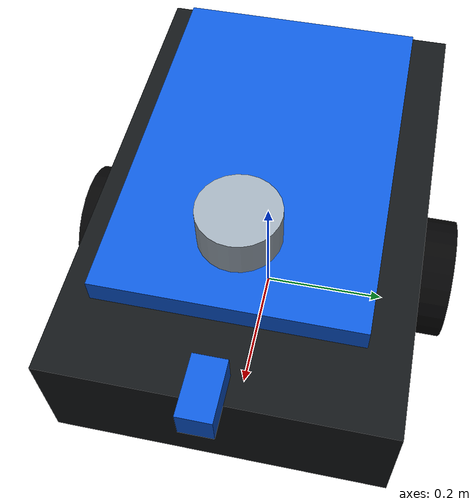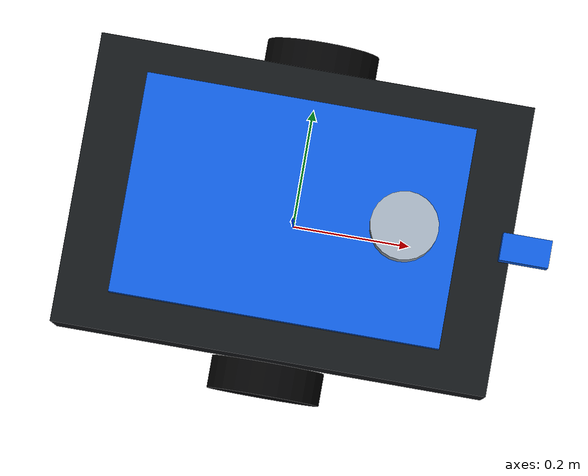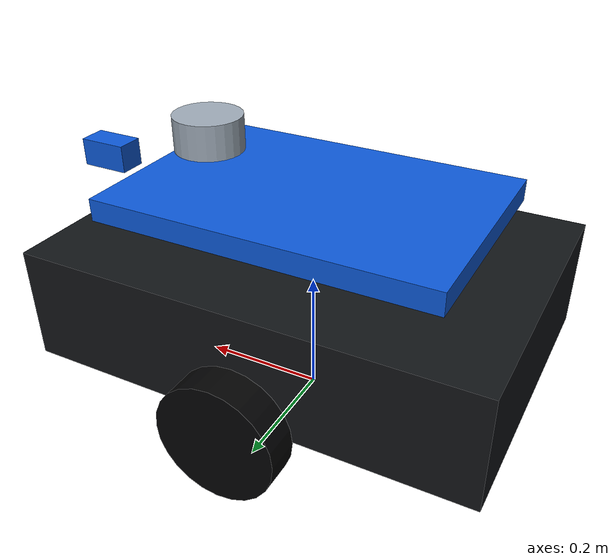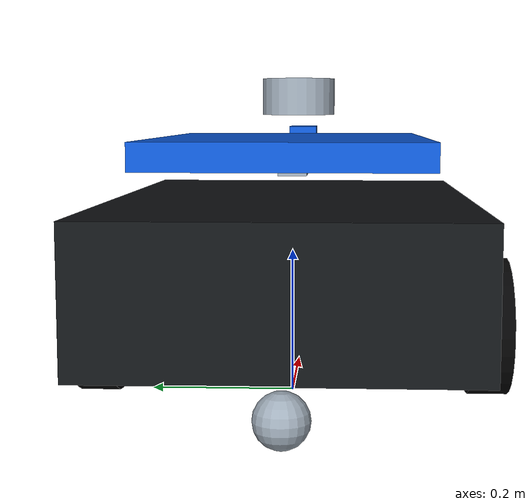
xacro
<?xml version="1.0"?>
<robot xmlns:xacro="http://www.ros.org/wiki/xacro" name="nexus_sentinel">
  <xacro:arg name="use_sim" default="true"/>
  <xacro:arg name="controller_config" default=""/>

  <xacro:property name="base_length" value="0.72"/>
  <xacro:property name="base_width" value="0.48"/>
  <xacro:property name="base_height" value="0.18"/>
  <xacro:property name="wheel_radius" value="0.095"/>
  <xacro:property name="wheel_width" value="0.055"/>
  <xacro:property name="wheel_separation" value="0.54"/>
  <xacro:property name="caster_radius" value="0.035"/>
  <material name="sentinel_charcoal">
    <color rgba="0.07 0.08 0.09 1.0"/>
  </material>
  <material name="sentinel_blue">
    <color rgba="0.05 0.35 0.85 1.0"/>
  </material>
  <material name="sentinel_silver">
    <color rgba="0.62 0.67 0.72 1.0"/>
  </material>
  <material name="sentinel_rubber">
    <color rgba="0.01 0.01 0.012 1.0"/>
  </material>

  <xacro:macro name="box_inertia" params="mass x y z">
    <inertial>
      <mass value="${mass}"/>
      <origin xyz="0 0 0" rpy="0 0 0"/>
      <inertia
        ixx="${mass * (y * y + z * z) / 12.0}"
        ixy="0.0"
        ixz="0.0"
        iyy="${mass * (x * x + z * z) / 12.0}"
        iyz="0.0"
        izz="${mass * (x * x + y * y) / 12.0}"/>
    </inertial>
  </xacro:macro>

  <xacro:macro name="cylinder_inertia" params="mass radius length axis">
    <inertial>
      <mass value="${mass}"/>
      <origin xyz="0 0 0" rpy="0 0 0"/>
      <xacro:if value="${axis == 'x'}">
        <inertia
          ixx="${0.5 * mass * radius * radius}"
          ixy="0.0"
          ixz="0.0"
          iyy="${mass * (3.0 * radius * radius + length * length) / 12.0}"
          iyz="0.0"
          izz="${mass * (3.0 * radius * radius + length * length) / 12.0}"/>
      </xacro:if>
      <xacro:if value="${axis == 'z'}">
        <inertia
          ixx="${mass * (3.0 * radius * radius + length * length) / 12.0}"
          ixy="0.0"
          ixz="0.0"
          iyy="${mass * (3.0 * radius * radius + length * length) / 12.0}"
          iyz="0.0"
          izz="${0.5 * mass * radius * radius}"/>
      </xacro:if>
    </inertial>
  </xacro:macro>

  <link name="base_footprint"/>

  <joint name="base_footprint_joint" type="fixed">
    <parent link="base_footprint"/>
    <child link="base_link"/>
    <origin xyz="0 0 ${wheel_radius}" rpy="0 0 0"/>
  </joint>

  <link name="base_link">
    <visual>
      <origin xyz="0 0 ${base_height / 2.0}" rpy="0 0 0"/>
      <geometry>
        <box size="${base_length} ${base_width} ${base_height}"/>
      </geometry>
      <material name="sentinel_charcoal"/>
    </visual>
    <collision>
      <origin xyz="0 0 ${base_height / 2.0}" rpy="0 0 0"/>
      <geometry>
        <box size="${base_length} ${base_width} ${base_height}"/>
      </geometry>
    </collision>
    <xacro:box_inertia mass="16.0" x="${base_length}" y="${base_width}" z="${base_height}"/>
  </link>

  <link name="top_deck_link">
    <visual>
      <origin xyz="0 0 0.245" rpy="0 0 0"/>
      <geometry>
        <box size="0.54 0.36 0.035"/>
      </geometry>
      <material name="sentinel_blue"/>
    </visual>
    <collision>
      <origin xyz="0 0 0.245" rpy="0 0 0"/>
      <geometry>
        <box size="0.54 0.36 0.035"/>
      </geometry>
    </collision>
    <xacro:box_inertia mass="1.2" x="0.54" y="0.36" z="0.035"/>
  </link>

  <joint name="top_deck_joint" type="fixed">
    <parent link="base_link"/>
    <child link="top_deck_link"/>
    <origin xyz="0 0 0" rpy="0 0 0"/>
  </joint>

  <xacro:macro name="drive_wheel" params="prefix y_sign">
    <link name="${prefix}_wheel_link">
      <visual>
        <origin xyz="0 0 0" rpy="${pi / 2.0} 0 0"/>
        <geometry>
          <cylinder radius="${wheel_radius}" length="${wheel_width}"/>
        </geometry>
        <material name="sentinel_rubber"/>
      </visual>
      <collision>
        <origin xyz="0 0 0" rpy="${pi / 2.0} 0 0"/>
        <geometry>
          <cylinder radius="${wheel_radius}" length="${wheel_width}"/>
        </geometry>
      </collision>
      <xacro:cylinder_inertia mass="1.2" radius="${wheel_radius}" length="${wheel_width}" axis="x"/>
    </link>
    <joint name="${prefix}_wheel_joint" type="continuous">
      <parent link="base_link"/>
      <child link="${prefix}_wheel_link"/>
      <origin xyz="0 ${y_sign * wheel_separation / 2.0} 0" rpy="0 0 0"/>
      <axis xyz="0 1 0"/>
      <limit effort="12.0" velocity="18.0"/>
      <dynamics damping="0.02" friction="0.01"/>
    </joint>
  </xacro:macro>

  <xacro:drive_wheel prefix="left" y_sign="1"/>
  <xacro:drive_wheel prefix="right" y_sign="-1"/>

  <xacro:macro name="caster" params="prefix x">
    <link name="${prefix}_caster_link">
      <visual>
        <origin xyz="0 0 0" rpy="0 0 0"/>
        <geometry>
          <sphere radius="${caster_radius}"/>
        </geometry>
        <material name="sentinel_silver"/>
      </visual>
      <collision>
        <origin xyz="0 0 0" rpy="0 0 0"/>
        <geometry>
          <sphere radius="${caster_radius}"/>
        </geometry>
      </collision>
      <inertial>
        <mass value="0.18"/>
        <origin xyz="0 0 0" rpy="0 0 0"/>
        <inertia ixx="0.00009" ixy="0.0" ixz="0.0" iyy="0.00009" iyz="0.0" izz="0.00009"/>
      </inertial>
    </link>
    <joint name="${prefix}_caster_joint" type="fixed">
      <parent link="base_link"/>
      <child link="${prefix}_caster_link"/>
      <origin xyz="${x} 0 ${-wheel_radius + caster_radius}" rpy="0 0 0"/>
    </joint>
  </xacro:macro>

  <xacro:caster prefix="front" x="0.28"/>
  <xacro:caster prefix="rear" x="-0.28"/>

  <link name="laser_link">
    <visual>
      <origin xyz="0 0 0" rpy="0 0 0"/>
      <geometry>
        <cylinder radius="0.055" length="0.055"/>
      </geometry>
      <material name="sentinel_silver"/>
    </visual>
    <collision>
      <origin xyz="0 0 0" rpy="0 0 0"/>
      <geometry>
        <cylinder radius="0.055" length="0.055"/>
      </geometry>
    </collision>
    <xacro:cylinder_inertia mass="0.25" radius="0.055" length="0.055" axis="z"/>
  </link>

  <joint name="laser_joint" type="fixed">
    <parent link="base_link"/>
    <child link="laser_link"/>
    <origin xyz="0.18 0 0.32" rpy="0 0 0"/>
  </joint>

  <link name="camera_link">
    <visual>
      <origin xyz="0 0 0" rpy="0 0 0"/>
      <geometry>
        <box size="0.08 0.045 0.045"/>
      </geometry>
      <material name="sentinel_blue"/>
    </visual>
    <collision>
      <origin xyz="0 0 0" rpy="0 0 0"/>
      <geometry>
        <box size="0.08 0.045 0.045"/>
      </geometry>
    </collision>
    <xacro:box_inertia mass="0.18" x="0.08" y="0.045" z="0.045"/>
  </link>

  <joint name="camera_joint" type="fixed">
    <parent link="base_link"/>
    <child link="camera_link"/>
    <origin xyz="0.38 0 0.25" rpy="0 0 0"/>
  </joint>

  <link name="camera_optical_frame"/>
  <joint name="camera_optical_joint" type="fixed">
    <parent link="camera_link"/>
    <child link="camera_optical_frame"/>
    <origin xyz="0.045 0 0" rpy="${-pi / 2.0} 0 ${-pi / 2.0}"/>
  </joint>

  <link name="imu_link">
    <visual>
      <origin xyz="0 0 0" rpy="0 0 0"/>
      <geometry>
        <box size="0.055 0.04 0.02"/>
      </geometry>
      <material name="sentinel_silver"/>
    </visual>
    <collision>
      <origin xyz="0 0 0" rpy="0 0 0"/>
      <geometry>
        <box size="0.055 0.04 0.02"/>
      </geometry>
    </collision>
    <xacro:box_inertia mass="0.08" x="0.055" y="0.04" z="0.02"/>
  </link>

  <joint name="imu_joint" type="fixed">
    <parent link="base_link"/>
    <child link="imu_link"/>
    <origin xyz="0 0 0.22" rpy="0 0 0"/>
  </joint>

  <gazebo reference="base_link">
    <material>Gazebo/DarkGrey</material>
  </gazebo>
  <gazebo reference="top_deck_link">
    <material>Gazebo/Blue</material>
  </gazebo>
  <gazebo reference="left_wheel_link">
    <material>Gazebo/Black</material>
    <mu1>1.0</mu1>
    <mu2>1.0</mu2>
  </gazebo>
  <gazebo reference="right_wheel_link">
    <material>Gazebo/Black</material>
    <mu1>1.0</mu1>
    <mu2>1.0</mu2>
  </gazebo>

  <gazebo reference="laser_link">
    <sensor name="front_lidar" type="gpu_lidar">
      <topic>scan</topic>
      <update_rate>12</update_rate>
      <ray>
        <scan>
          <horizontal>
            <samples>720</samples>
            <resolution>1</resolution>
            <min_angle>-3.14159</min_angle>
            <max_angle>3.14159</max_angle>
          </horizontal>
        </scan>
        <range>
          <min>0.08</min>
          <max>12.0</max>
          <resolution>0.01</resolution>
        </range>
        <noise>
          <type>gaussian</type>
          <mean>0.0</mean>
          <stddev>0.01</stddev>
        </noise>
      </ray>
      <always_on>true</always_on>
      <visualize>true</visualize>
    </sensor>
  </gazebo>

  <gazebo reference="camera_link">
    <sensor name="front_camera" type="camera">
      <topic>camera</topic>
      <update_rate>15</update_rate>
      <camera>
        <horizontal_fov>1.3962634</horizontal_fov>
        <image>
          <width>640</width>
          <height>480</height>
          <format>R8G8B8</format>
        </image>
        <clip>
          <near>0.05</near>
          <far>30.0</far>
        </clip>
      </camera>
      <always_on>true</always_on>
      <visualize>true</visualize>
    </sensor>
  </gazebo>

  <gazebo reference="imu_link">
    <sensor name="base_imu" type="imu">
      <topic>imu</topic>
      <update_rate>50</update_rate>
      <always_on>true</always_on>
    </sensor>
  </gazebo>

  <ros2_control name="SentinelGazeboSystem" type="system">
    <hardware>
      <plugin>gz_ros2_control/GazeboSimSystem</plugin>
    </hardware>
    <joint name="left_wheel_joint">
      <command_interface name="velocity"/>
      <state_interface name="position"/>
      <state_interface name="velocity"/>
    </joint>
    <joint name="right_wheel_joint">
      <command_interface name="velocity"/>
      <state_interface name="position"/>
      <state_interface name="velocity"/>
    </joint>
    <sensor name="base_imu">
      <state_interface name="orientation.x"/>
      <state_interface name="orientation.y"/>
      <state_interface name="orientation.z"/>
      <state_interface name="orientation.w"/>
      <state_interface name="angular_velocity.x"/>
      <state_interface name="angular_velocity.y"/>
      <state_interface name="angular_velocity.z"/>
      <state_interface name="linear_acceleration.x"/>
      <state_interface name="linear_acceleration.y"/>
      <state_interface name="linear_acceleration.z"/>
    </sensor>
  </ros2_control>

  <gazebo>
    <plugin filename="gz_ros2_control-system" name="gz_ros2_control::GazeboSimROS2ControlPlugin">
      <ros>
        <namespace>/</namespace>
      </ros>
      <parameters>$(arg controller_config)</parameters>
    </plugin>
  </gazebo>

</robot>
